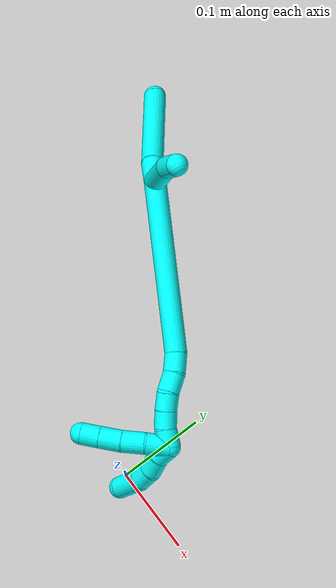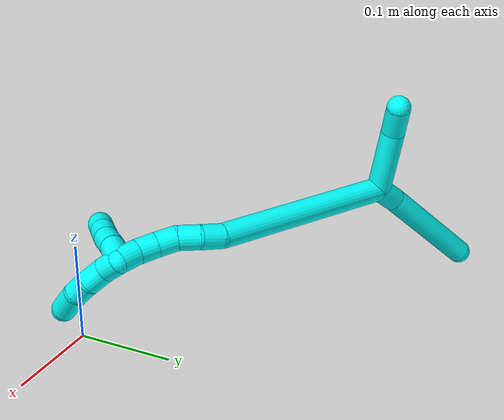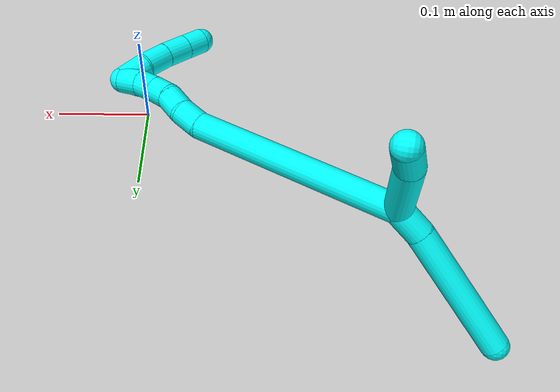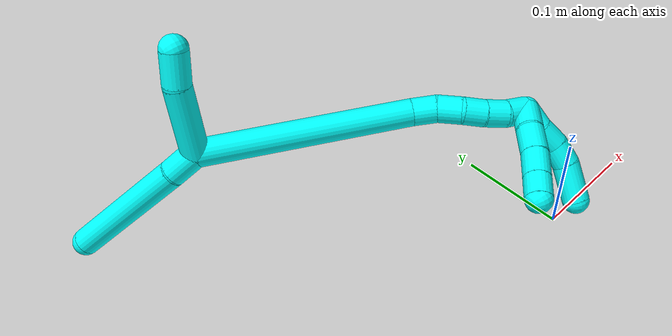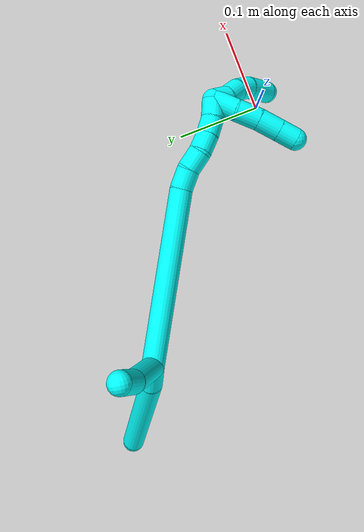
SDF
<sdf version="1.7">
 <world name="default">
  <model name="3">
   <static>0</static>
   <link name="3">
    <collision name="collision-cylinder-e_1_2_8">
     <pose>0.002362 0.009126 0.010692 -0.706568 0.16645 -0.061502</pose>
     <geometry><cylinder><radius>0.0125</radius><length>0.028508</length></cylinder></geometry>
     <surface>
      <friction><ode><mu>1.16</mu><mu2>1.16</mu2><slip1>0</slip1><slip2>0</slip2></ode></friction>
      <contact><ode><kp>1e+06</kp><kd>1</kd><max_vel>0</max_vel><min_depth>0.001</min_depth></ode></contact>
     </surface>
    </collision>
    <visual name="visual-cylinder-e_1_2_8">
     <pose>0.002362 0.009126 0.010692 -0.706568 0.16645 -0.061502</pose>
     <geometry><cylinder><radius>0.0125</radius><length>0.028508</length></cylinder></geometry>
     <material><ambient>0.003922 1 0.996078 1</ambient></material>
    </visual>
    <collision name="collision-cylinder-e_2_8_6">
     <pose>0.020248 0.061297 0.061337 -0.822624 0.25843 -0.113236</pose>
     <geometry><cylinder><radius>0.0125</radius><length>0.121492</length></cylinder></geometry>
     <surface>
      <friction><ode><mu>1.16</mu><mu2>1.16</mu2><slip1>0</slip1><slip2>0</slip2></ode></friction>
      <contact><ode><kp>1e+06</kp><kd>1</kd><max_vel>0</max_vel><min_depth>0.001</min_depth></ode></contact>
     </surface>
    </collision>
    <visual name="visual-cylinder-e_2_8_6">
     <pose>0.020248 0.061297 0.061337 -0.822624 0.25843 -0.113236</pose>
     <geometry><cylinder><radius>0.0125</radius><length>0.121492</length></cylinder></geometry>
     <material><ambient>0.003922 1 0.996078 1</ambient></material>
    </visual>
    <collision name="collision-cylinder-e_1_2_9">
     <pose>0.012364 -0.032204 -0.001278 1.61046 0.366306 0.38078</pose>
     <geometry><cylinder><radius>0.0125</radius><length>0.069038</length></cylinder></geometry>
     <surface>
      <friction><ode><mu>1.16</mu><mu2>1.16</mu2><slip1>0</slip1><slip2>0</slip2></ode></friction>
      <contact><ode><kp>1e+06</kp><kd>1</kd><max_vel>0</max_vel><min_depth>0.001</min_depth></ode></contact>
     </surface>
    </collision>
    <visual name="visual-cylinder-e_1_2_9">
     <pose>0.012364 -0.032204 -0.001278 1.61046 0.366306 0.38078</pose>
     <geometry><cylinder><radius>0.0125</radius><length>0.069038</length></cylinder></geometry>
     <material><ambient>0.003922 1 0.996078 1</ambient></material>
    </visual>
    <collision name="collision-cylinder-e_2_9_5">
     <pose>0.031248 -0.077976 -0.006167 1.83089 0.434798 0.559647</pose>
     <geometry><cylinder><radius>0.0125</radius><length>0.030962</length></cylinder></geometry>
     <surface>
      <friction><ode><mu>1.16</mu><mu2>1.16</mu2><slip1>0</slip1><slip2>0</slip2></ode></friction>
      <contact><ode><kp>1e+06</kp><kd>1</kd><max_vel>0</max_vel><min_depth>0.001</min_depth></ode></contact>
     </surface>
    </collision>
    <visual name="visual-cylinder-e_2_9_5">
     <pose>0.031248 -0.077976 -0.006167 1.83089 0.434798 0.559647</pose>
     <geometry><cylinder><radius>0.0125</radius><length>0.030962</length></cylinder></geometry>
     <material><ambient>0.003922 1 0.996078 1</ambient></material>
    </visual>
    <collision name="collision-cylinder-e_1_2_10">
     <pose>-0.034643 -0.002149 -0.090267 3.11779 -0.366354 -3.01327</pose>
     <geometry><cylinder><radius>0.0125</radius><length>0.193421</length></cylinder></geometry>
     <surface>
      <friction><ode><mu>1.16</mu><mu2>1.16</mu2><slip1>0</slip1><slip2>0</slip2></ode></friction>
      <contact><ode><kp>1e+06</kp><kd>1</kd><max_vel>0</max_vel><min_depth>0.001</min_depth></ode></contact>
     </surface>
    </collision>
    <visual name="visual-cylinder-e_1_2_10">
     <pose>-0.034643 -0.002149 -0.090267 3.11779 -0.366354 -3.01327</pose>
     <geometry><cylinder><radius>0.0125</radius><length>0.193421</length></cylinder></geometry>
     <material><ambient>0.003922 1 0.996078 1</ambient></material>
    </visual>
    <collision name="collision-cylinder-e_2_10_11">
     <pose>-0.075124 -0.00648 -0.19012 2.91779 -0.535836 -2.36453</pose>
     <geometry><cylinder><radius>0.0125</radius><length>0.022866</length></cylinder></geometry>
     <surface>
      <friction><ode><mu>1.16</mu><mu2>1.16</mu2><slip1>0</slip1><slip2>0</slip2></ode></friction>
      <contact><ode><kp>1e+06</kp><kd>1</kd><max_vel>0</max_vel><min_depth>0.001</min_depth></ode></contact>
     </surface>
    </collision>
    <visual name="visual-cylinder-e_2_10_11">
     <pose>-0.075124 -0.00648 -0.19012 2.91779 -0.535836 -2.36453</pose>
     <geometry><cylinder><radius>0.0125</radius><length>0.022866</length></cylinder></geometry>
     <material><ambient>0.003922 1 0.996078 1</ambient></material>
    </visual>
    <collision name="collision-cylinder-e_3_11_12">
     <pose>-0.088796 -0.010214 -0.207545 2.94617 -0.77556 -2.67054</pose>
     <geometry><cylinder><radius>0.0125</radius><length>0.022382</length></cylinder></geometry>
     <surface>
      <friction><ode><mu>1.16</mu><mu2>1.16</mu2><slip1>0</slip1><slip2>0</slip2></ode></friction>
      <contact><ode><kp>1e+06</kp><kd>1</kd><max_vel>0</max_vel><min_depth>0.001</min_depth></ode></contact>
     </surface>
    </collision>
    <visual name="visual-cylinder-e_3_11_12">
     <pose>-0.088796 -0.010214 -0.207545 2.94617 -0.77556 -2.67054</pose>
     <geometry><cylinder><radius>0.0125</radius><length>0.022382</length></cylinder></geometry>
     <material><ambient>0.003922 1 0.996078 1</ambient></material>
    </visual>
    <collision name="collision-cylinder-e_4_12_13">
     <pose>-0.102656 -0.010588 -0.223561 -2.99867 -0.630046 2.70913</pose>
     <geometry><cylinder><radius>0.0125</radius><length>0.020451</length></cylinder></geometry>
     <surface>
      <friction><ode><mu>1.16</mu><mu2>1.16</mu2><slip1>0</slip1><slip2>0</slip2></ode></friction>
      <contact><ode><kp>1e+06</kp><kd>1</kd><max_vel>0</max_vel><min_depth>0.001</min_depth></ode></contact>
     </surface>
    </collision>
    <visual name="visual-cylinder-e_4_12_13">
     <pose>-0.102656 -0.010588 -0.223561 -2.99867 -0.630046 2.70913</pose>
     <geometry><cylinder><radius>0.0125</radius><length>0.020451</length></cylinder></geometry>
     <material><ambient>0.003922 1 0.996078 1</ambient></material>
    </visual>
    <collision name="collision-cylinder-e_5_13_14">
     <pose>-0.113688 -0.008398 -0.240427 -3.02542 -0.519927 2.71109</pose>
     <geometry><cylinder><radius>0.0125</radius><length>0.020157</length></cylinder></geometry>
     <surface>
      <friction><ode><mu>1.16</mu><mu2>1.16</mu2><slip1>0</slip1><slip2>0</slip2></ode></friction>
      <contact><ode><kp>1e+06</kp><kd>1</kd><max_vel>0</max_vel><min_depth>0.001</min_depth></ode></contact>
     </surface>
    </collision>
    <visual name="visual-cylinder-e_5_13_14">
     <pose>-0.113688 -0.008398 -0.240427 -3.02542 -0.519927 2.71109</pose>
     <geometry><cylinder><radius>0.0125</radius><length>0.020157</length></cylinder></geometry>
     <material><ambient>0.003922 1 0.996078 1</ambient></material>
    </visual>
    <collision name="collision-cylinder-e_6_14_1">
     <pose>-0.121533 -0.006057 -0.258991 -3.00801 -0.27746 2.24806</pose>
     <geometry><cylinder><radius>0.0125</radius><length>0.020722</length></cylinder></geometry>
     <surface>
      <friction><ode><mu>1.16</mu><mu2>1.16</mu2><slip1>0</slip1><slip2>0</slip2></ode></friction>
      <contact><ode><kp>1e+06</kp><kd>1</kd><max_vel>0</max_vel><min_depth>0.001</min_depth></ode></contact>
     </surface>
    </collision>
    <visual name="visual-cylinder-e_6_14_1">
     <pose>-0.121533 -0.006057 -0.258991 -3.00801 -0.27746 2.24806</pose>
     <geometry><cylinder><radius>0.0125</radius><length>0.020722</length></cylinder></geometry>
     <material><ambient>0.003922 1 0.996078 1</ambient></material>
    </visual>
    <collision name="collision-cylinder-e_1_1_15">
     <pose>-0.135178 -0.007504 -0.26079 0.33093 -0.902048 -0.161403</pose>
     <geometry><cylinder><radius>0.0125</radius><length>0.027547</length></cylinder></geometry>
     <surface>
      <friction><ode><mu>1.16</mu><mu2>1.16</mu2><slip1>0</slip1><slip2>0</slip2></ode></friction>
      <contact><ode><kp>1e+06</kp><kd>1</kd><max_vel>0</max_vel><min_depth>0.001</min_depth></ode></contact>
     </surface>
    </collision>
    <visual name="visual-cylinder-e_1_1_15">
     <pose>-0.135178 -0.007504 -0.26079 0.33093 -0.902048 -0.161403</pose>
     <geometry><cylinder><radius>0.0125</radius><length>0.027547</length></cylinder></geometry>
     <material><ambient>0.003922 1 0.996078 1</ambient></material>
    </visual>
    <collision name="collision-cylinder-e_2_15_16">
     <pose>-0.156922 -0.010827 -0.245514 0.075893 -0.987311 -0.040851</pose>
     <geometry><cylinder><radius>0.0125</radius><length>0.026212</length></cylinder></geometry>
     <surface>
      <friction><ode><mu>1.16</mu><mu2>1.16</mu2><slip1>0</slip1><slip2>0</slip2></ode></friction>
      <contact><ode><kp>1e+06</kp><kd>1</kd><max_vel>0</max_vel><min_depth>0.001</min_depth></ode></contact>
     </surface>
    </collision>
    <visual name="visual-cylinder-e_2_15_16">
     <pose>-0.156922 -0.010827 -0.245514 0.075893 -0.987311 -0.040851</pose>
     <geometry><cylinder><radius>0.0125</radius><length>0.026212</length></cylinder></geometry>
     <material><ambient>0.003922 1 0.996078 1</ambient></material>
    </visual>
    <collision name="collision-cylinder-e_3_16_17">
     <pose>-0.177647 -0.011625 -0.230497 0.032082 -0.896592 -0.015431</pose>
     <geometry><cylinder><radius>0.0125</radius><length>0.025056</length></cylinder></geometry>
     <surface>
      <friction><ode><mu>1.16</mu><mu2>1.16</mu2><slip1>0</slip1><slip2>0</slip2></ode></friction>
      <contact><ode><kp>1e+06</kp><kd>1</kd><max_vel>0</max_vel><min_depth>0.001</min_depth></ode></contact>
     </surface>
    </collision>
    <visual name="visual-cylinder-e_3_16_17">
     <pose>-0.177647 -0.011625 -0.230497 0.032082 -0.896592 -0.015431</pose>
     <geometry><cylinder><radius>0.0125</radius><length>0.025056</length></cylinder></geometry>
     <material><ambient>0.003922 1 0.996078 1</ambient></material>
    </visual>
    <collision name="collision-cylinder-e_4_17_4">
     <pose>-0.195649 -0.012069 -0.215997 0.028954 -0.887706 -0.013768</pose>
     <geometry><cylinder><radius>0.0125</radius><length>0.021184</length></cylinder></geometry>
     <surface>
      <friction><ode><mu>1.16</mu><mu2>1.16</mu2><slip1>0</slip1><slip2>0</slip2></ode></friction>
      <contact><ode><kp>1e+06</kp><kd>1</kd><max_vel>0</max_vel><min_depth>0.001</min_depth></ode></contact>
     </surface>
    </collision>
    <visual name="visual-cylinder-e_4_17_4">
     <pose>-0.195649 -0.012069 -0.215997 0.028954 -0.887706 -0.013768</pose>
     <geometry><cylinder><radius>0.0125</radius><length>0.021184</length></cylinder></geometry>
     <material><ambient>0.003922 1 0.996078 1</ambient></material>
    </visual>
    <collision name="collision-cylinder-e_1_1_18">
     <pose>-0.133277 0.000111 -0.270205 -1.84054 -1.05733 1.30927</pose>
     <geometry><cylinder><radius>0.0125</radius><length>0.02045</length></cylinder></geometry>
     <surface>
      <friction><ode><mu>1.16</mu><mu2>1.16</mu2><slip1>0</slip1><slip2>0</slip2></ode></friction>
      <contact><ode><kp>1e+06</kp><kd>1</kd><max_vel>0</max_vel><min_depth>0.001</min_depth></ode></contact>
     </surface>
    </collision>
    <visual name="visual-cylinder-e_1_1_18">
     <pose>-0.133277 0.000111 -0.270205 -1.84054 -1.05733 1.30927</pose>
     <geometry><cylinder><radius>0.0125</radius><length>0.02045</length></cylinder></geometry>
     <material><ambient>0.003922 1 0.996078 1</ambient></material>
    </visual>
    <collision name="collision-cylinder-e_2_18_19">
     <pose>-0.150377 0.011099 -0.275852 -2.18217 -0.829172 1.40427</pose>
     <geometry><cylinder><radius>0.0125</radius><length>0.022224</length></cylinder></geometry>
     <surface>
      <friction><ode><mu>1.16</mu><mu2>1.16</mu2><slip1>0</slip1><slip2>0</slip2></ode></friction>
      <contact><ode><kp>1e+06</kp><kd>1</kd><max_vel>0</max_vel><min_depth>0.001</min_depth></ode></contact>
     </surface>
    </collision>
    <visual name="visual-cylinder-e_2_18_19">
     <pose>-0.150377 0.011099 -0.275852 -2.18217 -0.829172 1.40427</pose>
     <geometry><cylinder><radius>0.0125</radius><length>0.022224</length></cylinder></geometry>
     <material><ambient>0.003922 1 0.996078 1</ambient></material>
    </visual>
    <collision name="collision-cylinder-e_3_19_20">
     <pose>-0.167018 0.023515 -0.281592 -1.79536 -0.920008 1.11199</pose>
     <geometry><cylinder><radius>0.0125</radius><length>0.021233</length></cylinder></geometry>
     <surface>
      <friction><ode><mu>1.16</mu><mu2>1.16</mu2><slip1>0</slip1><slip2>0</slip2></ode></friction>
      <contact><ode><kp>1e+06</kp><kd>1</kd><max_vel>0</max_vel><min_depth>0.001</min_depth></ode></contact>
     </surface>
    </collision>
    <visual name="visual-cylinder-e_3_19_20">
     <pose>-0.167018 0.023515 -0.281592 -1.79536 -0.920008 1.11199</pose>
     <geometry><cylinder><radius>0.0125</radius><length>0.021233</length></cylinder></geometry>
     <material><ambient>0.003922 1 0.996078 1</ambient></material>
    </visual>
    <collision name="collision-cylinder-e_4_20_3">
     <pose>-0.189193 0.041251 -0.280633 -1.36519 -0.864491 0.717637</pose>
     <geometry><cylinder><radius>0.0125</radius><length>0.036093</length></cylinder></geometry>
     <surface>
      <friction><ode><mu>1.16</mu><mu2>1.16</mu2><slip1>0</slip1><slip2>0</slip2></ode></friction>
      <contact><ode><kp>1e+06</kp><kd>1</kd><max_vel>0</max_vel><min_depth>0.001</min_depth></ode></contact>
     </surface>
    </collision>
    <visual name="visual-cylinder-e_4_20_3">
     <pose>-0.189193 0.041251 -0.280633 -1.36519 -0.864491 0.717637</pose>
     <geometry><cylinder><radius>0.0125</radius><length>0.036093</length></cylinder></geometry>
     <material><ambient>0.003922 1 0.996078 1</ambient></material>
    </visual>
    <collision name="collision-sphere-3">
     <pose>-0.202923 0.052717 -0.278242 0 -0 0</pose>
     <geometry><sphere><radius>0.0125</radius></sphere></geometry>
     <surface>
      <friction><ode><mu>1.16</mu><mu2>1.16</mu2><slip1>0</slip1><slip2>0</slip2></ode></friction>
      <contact><ode><kp>1e+06</kp><kd>1</kd><max_vel>0</max_vel><min_depth>0.001</min_depth></ode></contact>
     </surface>
    </collision>
    <visual name="visual-sphere-3">
     <pose>-0.202923 0.052717 -0.278242 0 -0 0</pose>
     <geometry><sphere><radius>0.0125</radius></sphere></geometry>
     <material><ambient>0.003922 1 0.996078 1</ambient></material>
    </visual>
    <collision name="collision-sphere-20">
     <pose>-0.175464 0.029785 -0.283024 0 -0 0</pose>
     <geometry><sphere><radius>0.0125</radius></sphere></geometry>
     <surface>
      <friction><ode><mu>1.16</mu><mu2>1.16</mu2><slip1>0</slip1><slip2>0</slip2></ode></friction>
      <contact><ode><kp>1e+06</kp><kd>1</kd><max_vel>0</max_vel><min_depth>0.001</min_depth></ode></contact>
     </surface>
    </collision>
    <visual name="visual-sphere-20">
     <pose>-0.175464 0.029785 -0.283024 0 -0 0</pose>
     <geometry><sphere><radius>0.0125</radius></sphere></geometry>
     <material><ambient>0.003922 1 0.996078 1</ambient></material>
    </visual>
    <collision name="collision-sphere-19">
     <pose>-0.158571 0.017245 -0.28016 0 -0 0</pose>
     <geometry><sphere><radius>0.0125</radius></sphere></geometry>
     <surface>
      <friction><ode><mu>1.16</mu><mu2>1.16</mu2><slip1>0</slip1><slip2>0</slip2></ode></friction>
      <contact><ode><kp>1e+06</kp><kd>1</kd><max_vel>0</max_vel><min_depth>0.001</min_depth></ode></contact>
     </surface>
    </collision>
    <visual name="visual-sphere-19">
     <pose>-0.158571 0.017245 -0.28016 0 -0 0</pose>
     <geometry><sphere><radius>0.0125</radius></sphere></geometry>
     <material><ambient>0.003922 1 0.996078 1</ambient></material>
    </visual>
    <collision name="collision-sphere-10">
     <pose>-0.069286 -0.004298 -0.180535 0 -0 0</pose>
     <geometry><sphere><radius>0.0125</radius></sphere></geometry>
     <surface>
      <friction><ode><mu>1.16</mu><mu2>1.16</mu2><slip1>0</slip1><slip2>0</slip2></ode></friction>
      <contact><ode><kp>1e+06</kp><kd>1</kd><max_vel>0</max_vel><min_depth>0.001</min_depth></ode></contact>
     </surface>
    </collision>
    <visual name="visual-sphere-10">
     <pose>-0.069286 -0.004298 -0.180535 0 -0 0</pose>
     <geometry><sphere><radius>0.0125</radius></sphere></geometry>
     <material><ambient>0.003922 1 0.996078 1</ambient></material>
    </visual>
    <collision name="collision-sphere-5">
     <pose>0.037769 -0.091544 -0.009777 0 -0 0</pose>
     <geometry><sphere><radius>0.0125</radius></sphere></geometry>
     <surface>
      <friction><ode><mu>1.16</mu><mu2>1.16</mu2><slip1>0</slip1><slip2>0</slip2></ode></friction>
      <contact><ode><kp>1e+06</kp><kd>1</kd><max_vel>0</max_vel><min_depth>0.001</min_depth></ode></contact>
     </surface>
    </collision>
    <visual name="visual-sphere-5">
     <pose>0.037769 -0.091544 -0.009777 0 -0 0</pose>
     <geometry><sphere><radius>0.0125</radius></sphere></geometry>
     <material><ambient>0.003922 1 0.996078 1</ambient></material>
    </visual>
    <collision name="collision-sphere-6">
     <pose>0.035772 0.104341 0.10129 0 -0 0</pose>
     <geometry><sphere><radius>0.0125</radius></sphere></geometry>
     <surface>
      <friction><ode><mu>1.16</mu><mu2>1.16</mu2><slip1>0</slip1><slip2>0</slip2></ode></friction>
      <contact><ode><kp>1e+06</kp><kd>1</kd><max_vel>0</max_vel><min_depth>0.001</min_depth></ode></contact>
     </surface>
    </collision>
    <visual name="visual-sphere-6">
     <pose>0.035772 0.104341 0.10129 0 -0 0</pose>
     <geometry><sphere><radius>0.0125</radius></sphere></geometry>
     <material><ambient>0.003922 1 0.996078 1</ambient></material>
    </visual>
    <collision name="collision-sphere-9">
     <pose>0.024727 -0.064407 -0.002556 0 -0 0</pose>
     <geometry><sphere><radius>0.0125</radius></sphere></geometry>
     <surface>
      <friction><ode><mu>1.16</mu><mu2>1.16</mu2><slip1>0</slip1><slip2>0</slip2></ode></friction>
      <contact><ode><kp>1e+06</kp><kd>1</kd><max_vel>0</max_vel><min_depth>0.001</min_depth></ode></contact>
     </surface>
    </collision>
    <visual name="visual-sphere-9">
     <pose>0.024727 -0.064407 -0.002556 0 -0 0</pose>
     <geometry><sphere><radius>0.0125</radius></sphere></geometry>
     <material><ambient>0.003922 1 0.996078 1</ambient></material>
    </visual>
    <collision name="collision-sphere-2">
     <geometry><sphere><radius>0.0125</radius></sphere></geometry>
     <surface>
      <friction><ode><mu>1.16</mu><mu2>1.16</mu2><slip1>0</slip1><slip2>0</slip2></ode></friction>
      <contact><ode><kp>1e+06</kp><kd>1</kd><max_vel>0</max_vel><min_depth>0.001</min_depth></ode></contact>
     </surface>
    </collision>
    <visual name="visual-sphere-2">
     <geometry><sphere><radius>0.0125</radius></sphere></geometry>
     <material><ambient>0.003922 1 0.996078 1</ambient></material>
    </visual>
    <collision name="collision-sphere-8">
     <pose>0.004723 0.018253 0.021384 0 -0 0</pose>
     <geometry><sphere><radius>0.0125</radius></sphere></geometry>
     <surface>
      <friction><ode><mu>1.16</mu><mu2>1.16</mu2><slip1>0</slip1><slip2>0</slip2></ode></friction>
      <contact><ode><kp>1e+06</kp><kd>1</kd><max_vel>0</max_vel><min_depth>0.001</min_depth></ode></contact>
     </surface>
    </collision>
    <visual name="visual-sphere-8">
     <pose>0.004723 0.018253 0.021384 0 -0 0</pose>
     <geometry><sphere><radius>0.0125</radius></sphere></geometry>
     <material><ambient>0.003922 1 0.996078 1</ambient></material>
    </visual>
    <collision name="collision-sphere-11">
     <pose>-0.080961 -0.008662 -0.199706 0 -0 0</pose>
     <geometry><sphere><radius>0.0125</radius></sphere></geometry>
     <surface>
      <friction><ode><mu>1.16</mu><mu2>1.16</mu2><slip1>0</slip1><slip2>0</slip2></ode></friction>
      <contact><ode><kp>1e+06</kp><kd>1</kd><max_vel>0</max_vel><min_depth>0.001</min_depth></ode></contact>
     </surface>
    </collision>
    <visual name="visual-sphere-11">
     <pose>-0.080961 -0.008662 -0.199706 0 -0 0</pose>
     <geometry><sphere><radius>0.0125</radius></sphere></geometry>
     <material><ambient>0.003922 1 0.996078 1</ambient></material>
    </visual>
    <collision name="collision-sphere-12">
     <pose>-0.096631 -0.011765 -0.215383 0 -0 0</pose>
     <geometry><sphere><radius>0.0125</radius></sphere></geometry>
     <surface>
      <friction><ode><mu>1.16</mu><mu2>1.16</mu2><slip1>0</slip1><slip2>0</slip2></ode></friction>
      <contact><ode><kp>1e+06</kp><kd>1</kd><max_vel>0</max_vel><min_depth>0.001</min_depth></ode></contact>
     </surface>
    </collision>
    <visual name="visual-sphere-12">
     <pose>-0.096631 -0.011765 -0.215383 0 -0 0</pose>
     <geometry><sphere><radius>0.0125</radius></sphere></geometry>
     <material><ambient>0.003922 1 0.996078 1</ambient></material>
    </visual>
    <collision name="collision-sphere-13">
     <pose>-0.108681 -0.009412 -0.23174 0 -0 0</pose>
     <geometry><sphere><radius>0.0125</radius></sphere></geometry>
     <surface>
      <friction><ode><mu>1.16</mu><mu2>1.16</mu2><slip1>0</slip1><slip2>0</slip2></ode></friction>
      <contact><ode><kp>1e+06</kp><kd>1</kd><max_vel>0</max_vel><min_depth>0.001</min_depth></ode></contact>
     </surface>
    </collision>
    <visual name="visual-sphere-13">
     <pose>-0.108681 -0.009412 -0.23174 0 -0 0</pose>
     <geometry><sphere><radius>0.0125</radius></sphere></geometry>
     <material><ambient>0.003922 1 0.996078 1</ambient></material>
    </visual>
    <collision name="collision-sphere-14">
     <pose>-0.118695 -0.007384 -0.249115 0 -0 0</pose>
     <geometry><sphere><radius>0.0125</radius></sphere></geometry>
     <surface>
      <friction><ode><mu>1.16</mu><mu2>1.16</mu2><slip1>0</slip1><slip2>0</slip2></ode></friction>
      <contact><ode><kp>1e+06</kp><kd>1</kd><max_vel>0</max_vel><min_depth>0.001</min_depth></ode></contact>
     </surface>
    </collision>
    <visual name="visual-sphere-14">
     <pose>-0.118695 -0.007384 -0.249115 0 -0 0</pose>
     <geometry><sphere><radius>0.0125</radius></sphere></geometry>
     <material><ambient>0.003922 1 0.996078 1</ambient></material>
    </visual>
    <collision name="collision-sphere-1">
     <pose>-0.124371 -0.00473 -0.268866 0 -0 0</pose>
     <geometry><sphere><radius>0.0125</radius></sphere></geometry>
     <surface>
      <friction><ode><mu>1.16</mu><mu2>1.16</mu2><slip1>0</slip1><slip2>0</slip2></ode></friction>
      <contact><ode><kp>1e+06</kp><kd>1</kd><max_vel>0</max_vel><min_depth>0.001</min_depth></ode></contact>
     </surface>
    </collision>
    <visual name="visual-sphere-1">
     <pose>-0.124371 -0.00473 -0.268866 0 -0 0</pose>
     <geometry><sphere><radius>0.0125</radius></sphere></geometry>
     <material><ambient>0.003922 1 0.996078 1</ambient></material>
    </visual>
    <collision name="collision-sphere-18">
     <pose>-0.142184 0.004952 -0.271543 0 -0 0</pose>
     <geometry><sphere><radius>0.0125</radius></sphere></geometry>
     <surface>
      <friction><ode><mu>1.16</mu><mu2>1.16</mu2><slip1>0</slip1><slip2>0</slip2></ode></friction>
      <contact><ode><kp>1e+06</kp><kd>1</kd><max_vel>0</max_vel><min_depth>0.001</min_depth></ode></contact>
     </surface>
    </collision>
    <visual name="visual-sphere-18">
     <pose>-0.142184 0.004952 -0.271543 0 -0 0</pose>
     <geometry><sphere><radius>0.0125</radius></sphere></geometry>
     <material><ambient>0.003922 1 0.996078 1</ambient></material>
    </visual>
    <collision name="collision-sphere-15">
     <pose>-0.145985 -0.010279 -0.252714 0 -0 0</pose>
     <geometry><sphere><radius>0.0125</radius></sphere></geometry>
     <surface>
      <friction><ode><mu>1.16</mu><mu2>1.16</mu2><slip1>0</slip1><slip2>0</slip2></ode></friction>
      <contact><ode><kp>1e+06</kp><kd>1</kd><max_vel>0</max_vel><min_depth>0.001</min_depth></ode></contact>
     </surface>
    </collision>
    <visual name="visual-sphere-15">
     <pose>-0.145985 -0.010279 -0.252714 0 -0 0</pose>
     <geometry><sphere><radius>0.0125</radius></sphere></geometry>
     <material><ambient>0.003922 1 0.996078 1</ambient></material>
    </visual>
    <collision name="collision-sphere-16">
     <pose>-0.16786 -0.011374 -0.238314 0 -0 0</pose>
     <geometry><sphere><radius>0.0125</radius></sphere></geometry>
     <surface>
      <friction><ode><mu>1.16</mu><mu2>1.16</mu2><slip1>0</slip1><slip2>0</slip2></ode></friction>
      <contact><ode><kp>1e+06</kp><kd>1</kd><max_vel>0</max_vel><min_depth>0.001</min_depth></ode></contact>
     </surface>
    </collision>
    <visual name="visual-sphere-16">
     <pose>-0.16786 -0.011374 -0.238314 0 -0 0</pose>
     <geometry><sphere><radius>0.0125</radius></sphere></geometry>
     <material><ambient>0.003922 1 0.996078 1</ambient></material>
    </visual>
    <collision name="collision-sphere-17">
     <pose>-0.187434 -0.011876 -0.22268 0 -0 0</pose>
     <geometry><sphere><radius>0.0125</radius></sphere></geometry>
     <surface>
      <friction><ode><mu>1.16</mu><mu2>1.16</mu2><slip1>0</slip1><slip2>0</slip2></ode></friction>
      <contact><ode><kp>1e+06</kp><kd>1</kd><max_vel>0</max_vel><min_depth>0.001</min_depth></ode></contact>
     </surface>
    </collision>
    <visual name="visual-sphere-17">
     <pose>-0.187434 -0.011876 -0.22268 0 -0 0</pose>
     <geometry><sphere><radius>0.0125</radius></sphere></geometry>
     <material><ambient>0.003922 1 0.996078 1</ambient></material>
    </visual>
    <collision name="collision-sphere-4">
     <pose>-0.203865 -0.012263 -0.209314 0 -0 0</pose>
     <geometry><sphere><radius>0.0125</radius></sphere></geometry>
     <surface>
      <friction><ode><mu>1.16</mu><mu2>1.16</mu2><slip1>0</slip1><slip2>0</slip2></ode></friction>
      <contact><ode><kp>1e+06</kp><kd>1</kd><max_vel>0</max_vel><min_depth>0.001</min_depth></ode></contact>
     </surface>
    </collision>
    <visual name="visual-sphere-4">
     <pose>-0.203865 -0.012263 -0.209314 0 -0 0</pose>
     <geometry><sphere><radius>0.0125</radius></sphere></geometry>
     <material><ambient>0.003922 1 0.996078 1</ambient></material>
    </visual>
    <inertial>
     <pose>-0.061123 0.003954 -0.113993 0 -0 0</pose>
     <mass>0.75</mass>
     <inertia>
      <ixx>-0.000471</ixx>
      <ixy>0</ixy>
      <ixz>0</ixz>
      <iyy>0.000673</iyy>
      <iyz>0</iyz>
      <izz>0.000105</izz>
     </inertia>
    </inertial>
   </link>
   <pose>-0.237086 0.220465 0.110836 -1.59089 -0.159215 1.41376</pose>
  </model>
 </world>
</sdf>
